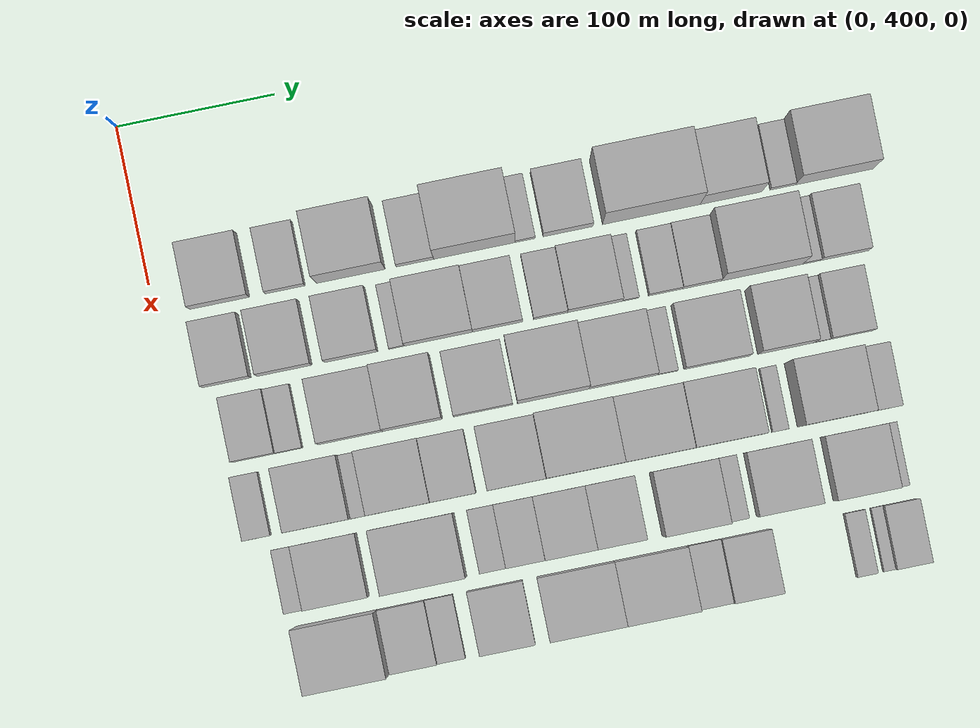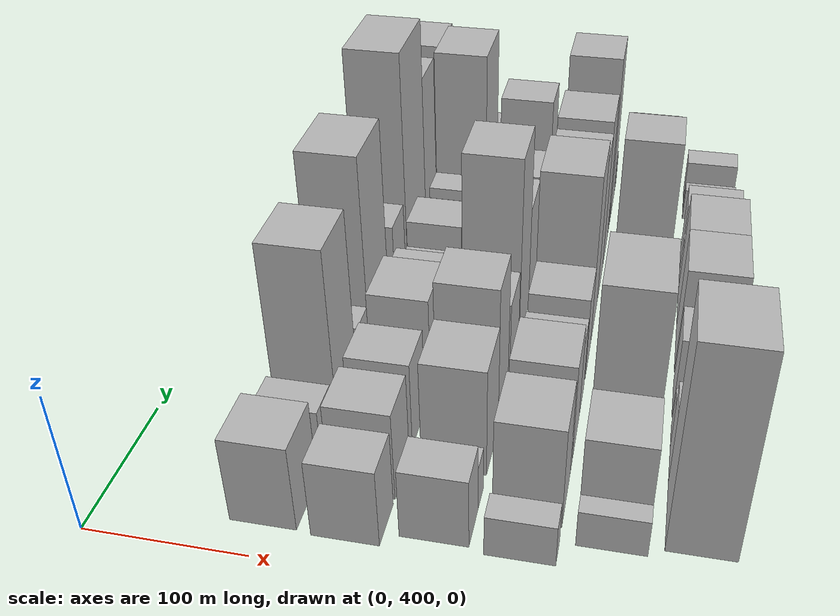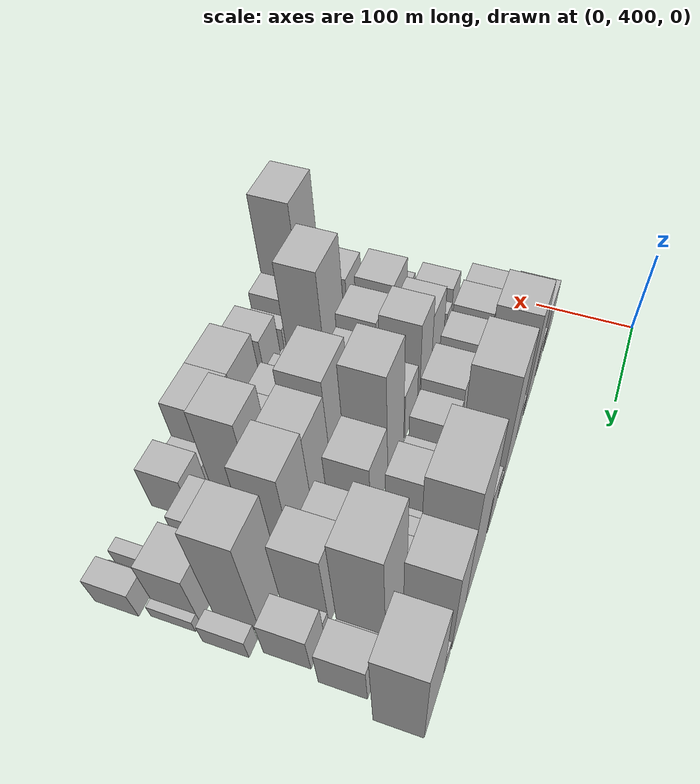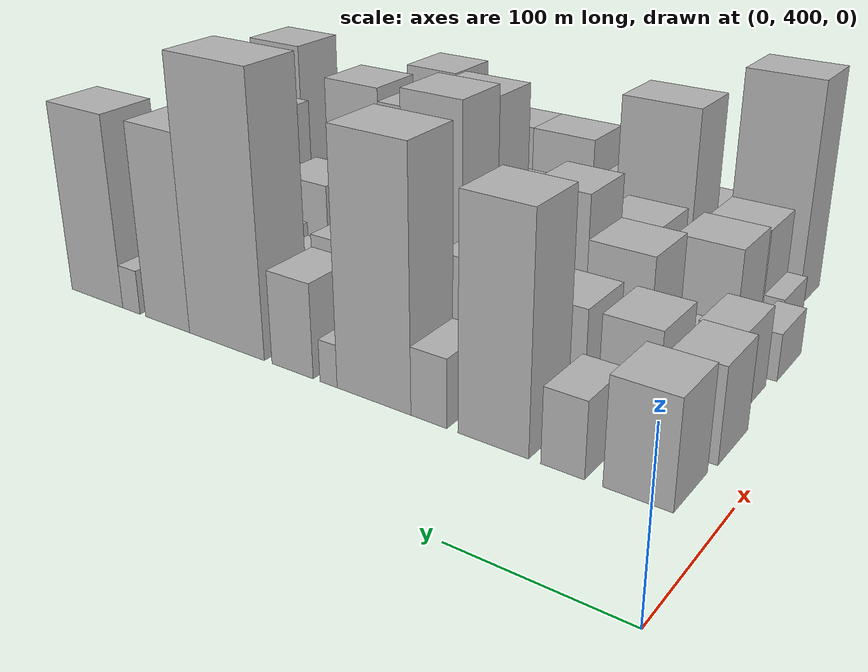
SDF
<sdf version="1.6">
 <world name="default">
  <model name="building_36">
   <static>1</static>
   <pose>100.0000 441.1656 0 0.000000 0.000000 0.000000</pose>
   <link name="link">
    <pose>0 0 31.50 0 0 0</pose>
    <collision name="collision"><geometry><box><size>40.0000 37.6408 63.0000</size></box></geometry></collision>
    <visual name="visual">
     <cast_shadows>0</cast_shadows>
     <geometry><box><size>40.0000 37.6408 63.0000</size></box></geometry>
     <material>
      <script>
       <uri>model://HANNAS_wall/materials/scripts</uri>
       <uri>model://HANNAS_wall/materials/textures</uri>
       <name>vrc/HANNAS_wall</name>
      </script>
     </material>
    </visual>
   </link>
  </model>
  <model name="building_37">
   <static>1</static>
   <pose>100.0000 482.5473 0 0.000000 0.000000 0.000000</pose>
   <link name="link">
    <pose>0 0 22.50 0 0 0</pose>
    <collision name="collision"><geometry><box><size>40.0000 25.1226 45.0000</size></box></geometry></collision>
    <visual name="visual">
     <cast_shadows>0</cast_shadows>
     <geometry><box><size>40.0000 25.1226 45.0000</size></box></geometry>
     <material>
      <script>
       <uri>model://HANNAS_wall/materials/scripts</uri>
       <uri>model://HANNAS_wall/materials/textures</uri>
       <name>vrc/HANNAS_wall</name>
      </script>
     </material>
    </visual>
   </link>
  </model>
  <model name="building_38">
   <static>1</static>
   <pose>100.0000 523.8339 0 0.000000 0.000000 0.000000</pose>
   <link name="link">
    <pose>0 0 69.00 0 0 0</pose>
    <collision name="collision"><geometry><box><size>40.0000 43.4507 138.0000</size></box></geometry></collision>
    <visual name="visual">
     <cast_shadows>0</cast_shadows>
     <geometry><box><size>40.0000 43.4507 138.0000</size></box></geometry>
     <material>
      <script>
       <uri>model://HANNAS_wall/materials/scripts</uri>
       <uri>model://HANNAS_wall/materials/textures</uri>
       <name>vrc/HANNAS_wall</name>
      </script>
     </material>
    </visual>
   </link>
  </model>
  <model name="building_39">
   <static>1</static>
   <pose>100.0000 564.3673 0 0.000000 0.000000 0.000000</pose>
   <link name="link">
    <pose>0 0 21.00 0 0 0</pose>
    <collision name="collision"><geometry><box><size>40.0000 23.6162 42.0000</size></box></geometry></collision>
    <visual name="visual">
     <cast_shadows>0</cast_shadows>
     <geometry><box><size>40.0000 23.6162 42.0000</size></box></geometry>
     <material>
      <script>
       <uri>model://HANNAS_wall/materials/scripts</uri>
       <uri>model://HANNAS_wall/materials/textures</uri>
       <name>vrc/HANNAS_wall</name>
      </script>
     </material>
    </visual>
   </link>
  </model>
  <model name="building_40">
   <static>1</static>
   <pose>100.0000 601.8708 0 0.000000 0.000000 0.000000</pose>
   <link name="link">
    <pose>0 0 78.00 0 0 0</pose>
    <collision name="collision"><geometry><box><size>40.0000 51.3907 156.0000</size></box></geometry></collision>
    <visual name="visual">
     <cast_shadows>0</cast_shadows>
     <geometry><box><size>40.0000 51.3907 156.0000</size></box></geometry>
     <material>
      <script>
       <uri>model://HANNAS_wall/materials/scripts</uri>
       <uri>model://HANNAS_wall/materials/textures</uri>
       <name>vrc/HANNAS_wall</name>
      </script>
     </material>
    </visual>
   </link>
  </model>
  <model name="building_41">
   <static>1</static>
   <pose>100.0000 633.8620 0 0.000000 0.000000 0.000000</pose>
   <link name="link">
    <pose>0 0 13.50 0 0 0</pose>
    <collision name="collision"><geometry><box><size>40.0000 12.5917 27.0000</size></box></geometry></collision>
    <visual name="visual">
     <cast_shadows>0</cast_shadows>
     <geometry><box><size>40.0000 12.5917 27.0000</size></box></geometry>
     <material>
      <script>
       <uri>model://HANNAS_wall/materials/scripts</uri>
       <uri>model://HANNAS_wall/materials/textures</uri>
       <name>vrc/HANNAS_wall</name>
      </script>
     </material>
    </visual>
   </link>
  </model>
  <model name="building_42">
   <static>1</static>
   <pose>100.0000 660.8852 0 0.000000 0.000000 0.000000</pose>
   <link name="link">
    <pose>0 0 30.00 0 0 0</pose>
    <collision name="collision"><geometry><box><size>40.0000 31.4549 60.0000</size></box></geometry></collision>
    <visual name="visual">
     <cast_shadows>0</cast_shadows>
     <geometry><box><size>40.0000 31.4549 60.0000</size></box></geometry>
     <material>
      <script>
       <uri>model://HANNAS_wall/materials/scripts</uri>
       <uri>model://HANNAS_wall/materials/textures</uri>
       <name>vrc/HANNAS_wall</name>
      </script>
     </material>
    </visual>
   </link>
  </model>
  <model name="building_43">
   <static>1</static>
   <pose>100.0000 713.4635 0 0.000000 0.000000 0.000000</pose>
   <link name="link">
    <pose>0 0 88.50 0 0 0</pose>
    <collision name="collision"><geometry><box><size>40.0000 61.7016 177.0000</size></box></geometry></collision>
    <visual name="visual">
     <cast_shadows>0</cast_shadows>
     <geometry><box><size>40.0000 61.7016 177.0000</size></box></geometry>
     <material>
      <script>
       <uri>model://HANNAS_wall/materials/scripts</uri>
       <uri>model://HANNAS_wall/materials/textures</uri>
       <name>vrc/HANNAS_wall</name>
      </script>
     </material>
    </visual>
   </link>
  </model>
  <model name="building_44">
   <static>1</static>
   <pose>100.0000 763.8396 0 0.000000 0.000000 0.000000</pose>
   <link name="link">
    <pose>0 0 64.50 0 0 0</pose>
    <collision name="collision"><geometry><box><size>40.0000 39.0508 129.0000</size></box></geometry></collision>
    <visual name="visual">
     <cast_shadows>0</cast_shadows>
     <geometry><box><size>40.0000 39.0508 129.0000</size></box></geometry>
     <material>
      <script>
       <uri>model://HANNAS_wall/materials/scripts</uri>
       <uri>model://HANNAS_wall/materials/textures</uri>
       <name>vrc/HANNAS_wall</name>
      </script>
     </material>
    </visual>
   </link>
  </model>
  <model name="building_45">
   <static>1</static>
   <pose>100.0000 796.4080 0 0.000000 0.000000 0.000000</pose>
   <link name="link">
    <pose>0 0 15.00 0 0 0</pose>
    <collision name="collision"><geometry><box><size>40.0000 16.0860 30.0000</size></box></geometry></collision>
    <visual name="visual">
     <cast_shadows>0</cast_shadows>
     <geometry><box><size>40.0000 16.0860 30.0000</size></box></geometry>
     <material>
      <script>
       <uri>model://HANNAS_wall/materials/scripts</uri>
       <uri>model://HANNAS_wall/materials/textures</uri>
       <name>vrc/HANNAS_wall</name>
      </script>
     </material>
    </visual>
   </link>
  </model>
  <model name="building_46">
   <static>1</static>
   <pose>100.0000 828.9741 0 0.000000 0.000000 0.000000</pose>
   <link name="link">
    <pose>0 0 64.50 0 0 0</pose>
    <collision name="collision"><geometry><box><size>40.0000 49.0461 129.0000</size></box></geometry></collision>
    <visual name="visual">
     <cast_shadows>0</cast_shadows>
     <geometry><box><size>40.0000 49.0461 129.0000</size></box></geometry>
     <material>
      <script>
       <uri>model://HANNAS_wall/materials/scripts</uri>
       <uri>model://HANNAS_wall/materials/textures</uri>
       <name>vrc/HANNAS_wall</name>
      </script>
     </material>
    </visual>
   </link>
  </model>
  <model name="building_84">
   <static>1</static>
   <pose>149.0000 435.7550 0 0.000000 0.000000 0.000000</pose>
   <link name="link">
    <pose>0 0 28.50 0 0 0</pose>
    <collision name="collision"><geometry><box><size>40.0000 30.4782 57.0000</size></box></geometry></collision>
    <visual name="visual">
     <cast_shadows>0</cast_shadows>
     <geometry><box><size>40.0000 30.4782 57.0000</size></box></geometry>
     <material>
      <script>
       <uri>model://HANNAS_wall/materials/scripts</uri>
       <uri>model://HANNAS_wall/materials/textures</uri>
       <name>vrc/HANNAS_wall</name>
      </script>
     </material>
    </visual>
   </link>
  </model>
  <model name="building_85">
   <static>1</static>
   <pose>149.0000 472.2001 0 0.000000 0.000000 0.000000</pose>
   <link name="link">
    <pose>0 0 33.00 0 0 0</pose>
    <collision name="collision"><geometry><box><size>40.0000 34.4119 66.0000</size></box></geometry></collision>
    <visual name="visual">
     <cast_shadows>0</cast_shadows>
     <geometry><box><size>40.0000 34.4119 66.0000</size></box></geometry>
     <material>
      <script>
       <uri>model://HANNAS_wall/materials/scripts</uri>
       <uri>model://HANNAS_wall/materials/textures</uri>
       <name>vrc/HANNAS_wall</name>
      </script>
     </material>
    </visual>
   </link>
  </model>
  <model name="building_86">
   <static>1</static>
   <pose>149.0000 514.1675 0 0.000000 0.000000 0.000000</pose>
   <link name="link">
    <pose>0 0 33.00 0 0 0</pose>
    <collision name="collision"><geometry><box><size>40.0000 33.5229 66.0000</size></box></geometry></collision>
    <visual name="visual">
     <cast_shadows>0</cast_shadows>
     <geometry><box><size>40.0000 33.5229 66.0000</size></box></geometry>
     <material>
      <script>
       <uri>model://HANNAS_wall/materials/scripts</uri>
       <uri>model://HANNAS_wall/materials/textures</uri>
       <name>vrc/HANNAS_wall</name>
      </script>
     </material>
    </visual>
   </link>
  </model>
  <model name="building_87">
   <static>1</static>
   <pose>149.0000 542.8155 0 0.000000 0.000000 0.000000</pose>
   <link name="link">
    <pose>0 0 12.00 0 0 0</pose>
    <collision name="collision"><geometry><box><size>40.0000 9.7730 24.0000</size></box></geometry></collision>
    <visual name="visual">
     <cast_shadows>0</cast_shadows>
     <geometry><box><size>40.0000 9.7730 24.0000</size></box></geometry>
     <material>
      <script>
       <uri>model://HANNAS_wall/materials/scripts</uri>
       <uri>model://HANNAS_wall/materials/textures</uri>
       <name>vrc/HANNAS_wall</name>
      </script>
     </material>
    </visual>
   </link>
  </model>
  <model name="building_88">
   <static>1</static>
   <pose>149.0000 569.1627 0 0.000000 0.000000 0.000000</pose>
   <link name="link">
    <pose>0 0 37.50 0 0 0</pose>
    <collision name="collision"><geometry><box><size>40.0000 42.9213 75.0000</size></box></geometry></collision>
    <visual name="visual">
     <cast_shadows>0</cast_shadows>
     <geometry><box><size>40.0000 42.9213 75.0000</size></box></geometry>
     <material>
      <script>
       <uri>model://HANNAS_wall/materials/scripts</uri>
       <uri>model://HANNAS_wall/materials/textures</uri>
       <name>vrc/HANNAS_wall</name>
      </script>
     </material>
    </visual>
   </link>
  </model>
  <model name="building_89">
   <static>1</static>
   <pose>149.0000 606.3343 0 0.000000 0.000000 0.000000</pose>
   <link name="link">
    <pose>0 0 30.00 0 0 0</pose>
    <collision name="collision"><geometry><box><size>40.0000 31.4221 60.0000</size></box></geometry></collision>
    <visual name="visual">
     <cast_shadows>0</cast_shadows>
     <geometry><box><size>40.0000 31.4221 60.0000</size></box></geometry>
     <material>
      <script>
       <uri>model://HANNAS_wall/materials/scripts</uri>
       <uri>model://HANNAS_wall/materials/textures</uri>
       <name>vrc/HANNAS_wall</name>
      </script>
     </material>
    </visual>
   </link>
  </model>
  <model name="building_90">
   <static>1</static>
   <pose>149.0000 639.8095 0 0.000000 0.000000 0.000000</pose>
   <link name="link">
    <pose>0 0 21.00 0 0 0</pose>
    <collision name="collision"><geometry><box><size>40.0000 21.5283 42.0000</size></box></geometry></collision>
    <visual name="visual">
     <cast_shadows>0</cast_shadows>
     <geometry><box><size>40.0000 21.5283 42.0000</size></box></geometry>
     <material>
      <script>
       <uri>model://HANNAS_wall/materials/scripts</uri>
       <uri>model://HANNAS_wall/materials/textures</uri>
       <name>vrc/HANNAS_wall</name>
      </script>
     </material>
    </visual>
   </link>
  </model>
  <model name="building_91">
   <static>1</static>
   <pose>149.0000 667.9048 0 0.000000 0.000000 0.000000</pose>
   <link name="link">
    <pose>0 0 31.50 0 0 0</pose>
    <collision name="collision"><geometry><box><size>40.0000 34.6622 63.0000</size></box></geometry></collision>
    <visual name="visual">
     <cast_shadows>0</cast_shadows>
     <geometry><box><size>40.0000 34.6622 63.0000</size></box></geometry>
     <material>
      <script>
       <uri>model://HANNAS_wall/materials/scripts</uri>
       <uri>model://HANNAS_wall/materials/textures</uri>
       <name>vrc/HANNAS_wall</name>
      </script>
     </material>
    </visual>
   </link>
  </model>
  <model name="building_92">
   <static>1</static>
   <pose>149.0000 690.3986 0 0.000000 0.000000 0.000000</pose>
   <link name="link">
    <pose>0 0 10.50 0 0 0</pose>
    <collision name="collision"><geometry><box><size>40.0000 10.3255 21.0000</size></box></geometry></collision>
    <visual name="visual">
     <cast_shadows>0</cast_shadows>
     <geometry><box><size>40.0000 10.3255 21.0000</size></box></geometry>
     <material>
      <script>
       <uri>model://HANNAS_wall/materials/scripts</uri>
       <uri>model://HANNAS_wall/materials/textures</uri>
       <name>vrc/HANNAS_wall</name>
      </script>
     </material>
    </visual>
   </link>
  </model>
  <model name="building_93">
   <static>1</static>
   <pose>149.0000 712.2744 0 0.000000 0.000000 0.000000</pose>
   <link name="link">
    <pose>0 0 19.50 0 0 0</pose>
    <collision name="collision"><geometry><box><size>40.0000 21.4261 39.0000</size></box></geometry></collision>
    <visual name="visual">
     <cast_shadows>0</cast_shadows>
     <geometry><box><size>40.0000 21.4261 39.0000</size></box></geometry>
     <material>
      <script>
       <uri>model://HANNAS_wall/materials/scripts</uri>
       <uri>model://HANNAS_wall/materials/textures</uri>
       <name>vrc/HANNAS_wall</name>
      </script>
     </material>
    </visual>
   </link>
  </model>
  <model name="building_94">
   <static>1</static>
   <pose>149.0000 735.1538 0 0.000000 0.000000 0.000000</pose>
   <link name="link">
    <pose>0 0 24.00 0 0 0</pose>
    <collision name="collision"><geometry><box><size>40.0000 24.3326 48.0000</size></box></geometry></collision>
    <visual name="visual">
     <cast_shadows>0</cast_shadows>
     <geometry><box><size>40.0000 24.3326 48.0000</size></box></geometry>
     <material>
      <script>
       <uri>model://HANNAS_wall/materials/scripts</uri>
       <uri>model://HANNAS_wall/materials/textures</uri>
       <name>vrc/HANNAS_wall</name>
      </script>
     </material>
    </visual>
   </link>
  </model>
  <model name="building_95">
   <static>1</static>
   <pose>149.0000 772.9929 0 0.000000 0.000000 0.000000</pose>
   <link name="link">
    <pose>0 0 75.00 0 0 0</pose>
    <collision name="collision"><geometry><box><size>40.0000 51.3458 150.0000</size></box></geometry></collision>
    <visual name="visual">
     <cast_shadows>0</cast_shadows>
     <geometry><box><size>40.0000 51.3458 150.0000</size></box></geometry>
     <material>
      <script>
       <uri>model://HANNAS_wall/materials/scripts</uri>
       <uri>model://HANNAS_wall/materials/textures</uri>
       <name>vrc/HANNAS_wall</name>
      </script>
     </material>
    </visual>
   </link>
  </model>
  <model name="building_96">
   <static>1</static>
   <pose>149.0000 804.4716 0 0.000000 0.000000 0.000000</pose>
   <link name="link">
    <pose>0 0 13.50 0 0 0</pose>
    <collision name="collision"><geometry><box><size>40.0000 11.6116 27.0000</size></box></geometry></collision>
    <visual name="visual">
     <cast_shadows>0</cast_shadows>
     <geometry><box><size>40.0000 11.6116 27.0000</size></box></geometry>
     <material>
      <script>
       <uri>model://HANNAS_wall/materials/scripts</uri>
       <uri>model://HANNAS_wall/materials/textures</uri>
       <name>vrc/HANNAS_wall</name>
      </script>
     </material>
    </visual>
   </link>
  </model>
  <model name="building_97">
   <static>1</static>
   <pose>149.0000 825.4328 0 0.000000 0.000000 0.000000</pose>
   <link name="link">
    <pose>0 0 28.50 0 0 0</pose>
    <collision name="collision"><geometry><box><size>40.0000 30.3109 57.0000</size></box></geometry></collision>
    <visual name="visual">
     <cast_shadows>0</cast_shadows>
     <geometry><box><size>40.0000 30.3109 57.0000</size></box></geometry>
     <material>
      <script>
       <uri>model://HANNAS_wall/materials/scripts</uri>
       <uri>model://HANNAS_wall/materials/textures</uri>
       <name>vrc/HANNAS_wall</name>
      </script>
     </material>
    </visual>
   </link>
  </model>
  <model name="building_133">
   <static>1</static>
   <pose>198.0000 442.9491 0 0.000000 0.000000 0.000000</pose>
   <link name="link">
    <pose>0 0 25.50 0 0 0</pose>
    <collision name="collision"><geometry><box><size>40.0000 27.4139 51.0000</size></box></geometry></collision>
    <visual name="visual">
     <cast_shadows>0</cast_shadows>
     <geometry><box><size>40.0000 27.4139 51.0000</size></box></geometry>
     <material>
      <script>
       <uri>model://HANNAS_wall/materials/scripts</uri>
       <uri>model://HANNAS_wall/materials/textures</uri>
       <name>vrc/HANNAS_wall</name>
      </script>
     </material>
    </visual>
   </link>
  </model>
  <model name="building_134">
   <static>1</static>
   <pose>198.0000 465.0975 0 0.000000 0.000000 0.000000</pose>
   <link name="link">
    <pose>0 0 16.50 0 0 0</pose>
    <collision name="collision"><geometry><box><size>40.0000 16.8830 33.0000</size></box></geometry></collision>
    <visual name="visual">
     <cast_shadows>0</cast_shadows>
     <geometry><box><size>40.0000 16.8830 33.0000</size></box></geometry>
     <material>
      <script>
       <uri>model://HANNAS_wall/materials/scripts</uri>
       <uri>model://HANNAS_wall/materials/textures</uri>
       <name>vrc/HANNAS_wall</name>
      </script>
     </material>
    </visual>
   </link>
  </model>
  <model name="building_135">
   <static>1</static>
   <pose>198.0000 503.9978 0 0.000000 0.000000 0.000000</pose>
   <link name="link">
    <pose>0 0 40.50 0 0 0</pose>
    <collision name="collision"><geometry><box><size>40.0000 40.9177 81.0000</size></box></geometry></collision>
    <visual name="visual">
     <cast_shadows>0</cast_shadows>
     <geometry><box><size>40.0000 40.9177 81.0000</size></box></geometry>
     <material>
      <script>
       <uri>model://HANNAS_wall/materials/scripts</uri>
       <uri>model://HANNAS_wall/materials/textures</uri>
       <name>vrc/HANNAS_wall</name>
      </script>
     </material>
    </visual>
   </link>
  </model>
  <model name="building_136">
   <static>1</static>
   <pose>198.0000 543.0552 0 0.000000 0.000000 0.000000</pose>
   <link name="link">
    <pose>0 0 54.00 0 0 0</pose>
    <collision name="collision"><geometry><box><size>40.0000 37.1970 108.0000</size></box></geometry></collision>
    <visual name="visual">
     <cast_shadows>0</cast_shadows>
     <geometry><box><size>40.0000 37.1970 108.0000</size></box></geometry>
     <material>
      <script>
       <uri>model://HANNAS_wall/materials/scripts</uri>
       <uri>model://HANNAS_wall/materials/textures</uri>
       <name>vrc/HANNAS_wall</name>
      </script>
     </material>
    </visual>
   </link>
  </model>
  <model name="building_137">
   <static>1</static>
   <pose>198.0000 587.2409 0 0.000000 0.000000 0.000000</pose>
   <link name="link">
    <pose>0 0 31.50 0 0 0</pose>
    <collision name="collision"><geometry><box><size>40.0000 37.1743 63.0000</size></box></geometry></collision>
    <visual name="visual">
     <cast_shadows>0</cast_shadows>
     <geometry><box><size>40.0000 37.1743 63.0000</size></box></geometry>
     <material>
      <script>
       <uri>model://HANNAS_wall/materials/scripts</uri>
       <uri>model://HANNAS_wall/materials/textures</uri>
       <name>vrc/HANNAS_wall</name>
      </script>
     </material>
    </visual>
   </link>
  </model>
  <model name="building_138">
   <static>1</static>
   <pose>198.0000 631.2155 0 0.000000 0.000000 0.000000</pose>
   <link name="link">
    <pose>0 0 73.50 0 0 0</pose>
    <collision name="collision"><geometry><box><size>40.0000 44.7749 147.0000</size></box></geometry></collision>
    <visual name="visual">
     <cast_shadows>0</cast_shadows>
     <geometry><box><size>40.0000 44.7749 147.0000</size></box></geometry>
     <material>
      <script>
       <uri>model://HANNAS_wall/materials/scripts</uri>
       <uri>model://HANNAS_wall/materials/textures</uri>
       <name>vrc/HANNAS_wall</name>
      </script>
     </material>
    </visual>
   </link>
  </model>
  <model name="building_139">
   <static>1</static>
   <pose>198.0000 675.2200 0 0.000000 0.000000 0.000000</pose>
   <link name="link">
    <pose>0 0 40.50 0 0 0</pose>
    <collision name="collision"><geometry><box><size>40.0000 43.2341 81.0000</size></box></geometry></collision>
    <visual name="visual">
     <cast_shadows>0</cast_shadows>
     <geometry><box><size>40.0000 43.2341 81.0000</size></box></geometry>
     <material>
      <script>
       <uri>model://HANNAS_wall/materials/scripts</uri>
       <uri>model://HANNAS_wall/materials/textures</uri>
       <name>vrc/HANNAS_wall</name>
      </script>
     </material>
    </visual>
   </link>
  </model>
  <model name="building_140">
   <static>1</static>
   <pose>198.0000 703.3370 0 0.000000 0.000000 0.000000</pose>
   <link name="link">
    <pose>0 0 13.50 0 0 0</pose>
    <collision name="collision"><geometry><box><size>40.0000 12.9998 27.0000</size></box></geometry></collision>
    <visual name="visual">
     <cast_shadows>0</cast_shadows>
     <geometry><box><size>40.0000 12.9998 27.0000</size></box></geometry>
     <material>
      <script>
       <uri>model://HANNAS_wall/materials/scripts</uri>
       <uri>model://HANNAS_wall/materials/textures</uri>
       <name>vrc/HANNAS_wall</name>
      </script>
     </material>
    </visual>
   </link>
  </model>
  <model name="building_141">
   <static>1</static>
   <pose>198.0000 734.6066 0 0.000000 0.000000 0.000000</pose>
   <link name="link">
    <pose>0 0 36.00 0 0 0</pose>
    <collision name="collision"><geometry><box><size>40.0000 41.5394 72.0000</size></box></geometry></collision>
    <visual name="visual">
     <cast_shadows>0</cast_shadows>
     <geometry><box><size>40.0000 41.5394 72.0000</size></box></geometry>
     <material>
      <script>
       <uri>model://HANNAS_wall/materials/scripts</uri>
       <uri>model://HANNAS_wall/materials/textures</uri>
       <name>vrc/HANNAS_wall</name>
      </script>
     </material>
    </visual>
   </link>
  </model>
  <model name="building_142">
   <static>1</static>
   <pose>198.0000 777.9242 0 0.000000 0.000000 0.000000</pose>
   <link name="link">
    <pose>0 0 55.50 0 0 0</pose>
    <collision name="collision"><geometry><box><size>40.0000 35.0957 111.0000</size></box></geometry></collision>
    <visual name="visual">
     <cast_shadows>0</cast_shadows>
     <geometry><box><size>40.0000 35.0957 111.0000</size></box></geometry>
     <material>
      <script>
       <uri>model://HANNAS_wall/materials/scripts</uri>
       <uri>model://HANNAS_wall/materials/textures</uri>
       <name>vrc/HANNAS_wall</name>
      </script>
     </material>
    </visual>
   </link>
  </model>
  <model name="building_143">
   <static>1</static>
   <pose>198.0000 800.5905 0 0.000000 0.000000 0.000000</pose>
   <link name="link">
    <pose>0 0 12.00 0 0 0</pose>
    <collision name="collision"><geometry><box><size>40.0000 10.2369 24.0000</size></box></geometry></collision>
    <visual name="visual">
     <cast_shadows>0</cast_shadows>
     <geometry><box><size>40.0000 10.2369 24.0000</size></box></geometry>
     <material>
      <script>
       <uri>model://HANNAS_wall/materials/scripts</uri>
       <uri>model://HANNAS_wall/materials/textures</uri>
       <name>vrc/HANNAS_wall</name>
      </script>
     </material>
    </visual>
   </link>
  </model>
  <model name="building_144">
   <static>1</static>
   <pose>198.0000 819.5199 0 0.000000 0.000000 0.000000</pose>
   <link name="link">
    <pose>0 0 27.00 0 0 0</pose>
    <collision name="collision"><geometry><box><size>40.0000 27.6218 54.0000</size></box></geometry></collision>
    <visual name="visual">
     <cast_shadows>0</cast_shadows>
     <geometry><box><size>40.0000 27.6218 54.0000</size></box></geometry>
     <material>
      <script>
       <uri>model://HANNAS_wall/materials/scripts</uri>
       <uri>model://HANNAS_wall/materials/textures</uri>
       <name>vrc/HANNAS_wall</name>
      </script>
     </material>
    </visual>
   </link>
  </model>
  <model name="building_178">
   <static>1</static>
   <pose>247.0000 434.7086 0 0.000000 0.000000 0.000000</pose>
   <link name="link">
    <pose>0 0 15.00 0 0 0</pose>
    <collision name="collision"><geometry><box><size>40.0000 17.7222 30.0000</size></box></geometry></collision>
    <visual name="visual">
     <cast_shadows>0</cast_shadows>
     <geometry><box><size>40.0000 17.7222 30.0000</size></box></geometry>
     <material>
      <script>
       <uri>model://HANNAS_wall/materials/scripts</uri>
       <uri>model://HANNAS_wall/materials/textures</uri>
       <name>vrc/HANNAS_wall</name>
      </script>
     </material>
    </visual>
   </link>
  </model>
  <model name="building_179">
   <static>1</static>
   <pose>247.0000 473.1462 0 0.000000 0.000000 0.000000</pose>
   <link name="link">
    <pose>0 0 37.50 0 0 0</pose>
    <collision name="collision"><geometry><box><size>40.0000 41.1530 75.0000</size></box></geometry></collision>
    <visual name="visual">
     <cast_shadows>0</cast_shadows>
     <geometry><box><size>40.0000 41.1530 75.0000</size></box></geometry>
     <material>
      <script>
       <uri>model://HANNAS_wall/materials/scripts</uri>
       <uri>model://HANNAS_wall/materials/textures</uri>
       <name>vrc/HANNAS_wall</name>
      </script>
     </material>
    </visual>
   </link>
  </model>
  <model name="building_180">
   <static>1</static>
   <pose>247.0000 498.9372 0 0.000000 0.000000 0.000000</pose>
   <link name="link">
    <pose>0 0 10.50 0 0 0</pose>
    <collision name="collision"><geometry><box><size>40.0000 10.4289 21.0000</size></box></geometry></collision>
    <visual name="visual">
     <cast_shadows>0</cast_shadows>
     <geometry><box><size>40.0000 10.4289 21.0000</size></box></geometry>
     <material>
      <script>
       <uri>model://HANNAS_wall/materials/scripts</uri>
       <uri>model://HANNAS_wall/materials/textures</uri>
       <name>vrc/HANNAS_wall</name>
      </script>
     </material>
    </visual>
   </link>
  </model>
  <model name="building_181">
   <static>1</static>
   <pose>247.0000 524.1149 0 0.000000 0.000000 0.000000</pose>
   <link name="link">
    <pose>0 0 37.50 0 0 0</pose>
    <collision name="collision"><geometry><box><size>40.0000 39.9265 75.0000</size></box></geometry></collision>
    <visual name="visual">
     <cast_shadows>0</cast_shadows>
     <geometry><box><size>40.0000 39.9265 75.0000</size></box></geometry>
     <material>
      <script>
       <uri>model://HANNAS_wall/materials/scripts</uri>
       <uri>model://HANNAS_wall/materials/textures</uri>
       <name>vrc/HANNAS_wall</name>
      </script>
     </material>
    </visual>
   </link>
  </model>
  <model name="building_182">
   <static>1</static>
   <pose>247.0000 558.4577 0 0.000000 0.000000 0.000000</pose>
   <link name="link">
    <pose>0 0 28.50 0 0 0</pose>
    <collision name="collision"><geometry><box><size>40.0000 28.7592 57.0000</size></box></geometry></collision>
    <visual name="visual">
     <cast_shadows>0</cast_shadows>
     <geometry><box><size>40.0000 28.7592 57.0000</size></box></geometry>
     <material>
      <script>
       <uri>model://HANNAS_wall/materials/scripts</uri>
       <uri>model://HANNAS_wall/materials/textures</uri>
       <name>vrc/HANNAS_wall</name>
      </script>
     </material>
    </visual>
   </link>
  </model>
  <model name="building_183">
   <static>1</static>
   <pose>247.0000 598.2176 0 0.000000 0.000000 0.000000</pose>
   <link name="link">
    <pose>0 0 33.00 0 0 0</pose>
    <collision name="collision"><geometry><box><size>40.0000 36.7606 66.0000</size></box></geometry></collision>
    <visual name="visual">
     <cast_shadows>0</cast_shadows>
     <geometry><box><size>40.0000 36.7606 66.0000</size></box></geometry>
     <material>
      <script>
       <uri>model://HANNAS_wall/materials/scripts</uri>
       <uri>model://HANNAS_wall/materials/textures</uri>
       <name>vrc/HANNAS_wall</name>
      </script>
     </material>
    </visual>
   </link>
  </model>
  <model name="building_184">
   <static>1</static>
   <pose>247.0000 640.9851 0 0.000000 0.000000 0.000000</pose>
   <link name="link">
    <pose>0 0 67.50 0 0 0</pose>
    <collision name="collision"><geometry><box><size>40.0000 48.7743 135.0000</size></box></geometry></collision>
    <visual name="visual">
     <cast_shadows>0</cast_shadows>
     <geometry><box><size>40.0000 48.7743 135.0000</size></box></geometry>
     <material>
      <script>
       <uri>model://HANNAS_wall/materials/scripts</uri>
       <uri>model://HANNAS_wall/materials/textures</uri>
       <name>vrc/HANNAS_wall</name>
      </script>
     </material>
    </visual>
   </link>
  </model>
  <model name="building_185">
   <static>1</static>
   <pose>247.0000 687.0428 0 0.000000 0.000000 0.000000</pose>
   <link name="link">
    <pose>0 0 58.50 0 0 0</pose>
    <collision name="collision"><geometry><box><size>40.0000 43.3412 117.0000</size></box></geometry></collision>
    <visual name="visual">
     <cast_shadows>0</cast_shadows>
     <geometry><box><size>40.0000 43.3412 117.0000</size></box></geometry>
     <material>
      <script>
       <uri>model://HANNAS_wall/materials/scripts</uri>
       <uri>model://HANNAS_wall/materials/textures</uri>
       <name>vrc/HANNAS_wall</name>
      </script>
     </material>
    </visual>
   </link>
  </model>
  <model name="building_186">
   <static>1</static>
   <pose>247.0000 730.9006 0 0.000000 0.000000 0.000000</pose>
   <link name="link">
    <pose>0 0 63.00 0 0 0</pose>
    <collision name="collision"><geometry><box><size>40.0000 44.3744 126.0000</size></box></geometry></collision>
    <visual name="visual">
     <cast_shadows>0</cast_shadows>
     <geometry><box><size>40.0000 44.3744 126.0000</size></box></geometry>
     <material>
      <script>
       <uri>model://HANNAS_wall/materials/scripts</uri>
       <uri>model://HANNAS_wall/materials/textures</uri>
       <name>vrc/HANNAS_wall</name>
      </script>
     </material>
    </visual>
   </link>
  </model>
  <model name="building_187">
   <static>1</static>
   <pose>247.0000 764.2030 0 0.000000 0.000000 0.000000</pose>
   <link name="link">
    <pose>0 0 12.00 0 0 0</pose>
    <collision name="collision"><geometry><box><size>40.0000 10.2305 24.0000</size></box></geometry></collision>
    <visual name="visual">
     <cast_shadows>0</cast_shadows>
     <geometry><box><size>40.0000 10.2305 24.0000</size></box></geometry>
     <material>
      <script>
       <uri>model://HANNAS_wall/materials/scripts</uri>
       <uri>model://HANNAS_wall/materials/textures</uri>
       <name>vrc/HANNAS_wall</name>
      </script>
     </material>
    </visual>
   </link>
  </model>
  <model name="building_188">
   <static>1</static>
   <pose>247.0000 797.2385 0 0.000000 0.000000 0.000000</pose>
   <link name="link">
    <pose>0 0 72.00 0 0 0</pose>
    <collision name="collision"><geometry><box><size>40.0000 43.8404 144.0000</size></box></geometry></collision>
    <visual name="visual">
     <cast_shadows>0</cast_shadows>
     <geometry><box><size>40.0000 43.8404 144.0000</size></box></geometry>
     <material>
      <script>
       <uri>model://HANNAS_wall/materials/scripts</uri>
       <uri>model://HANNAS_wall/materials/textures</uri>
       <name>vrc/HANNAS_wall</name>
      </script>
     </material>
    </visual>
   </link>
  </model>
  <model name="building_189">
   <static>1</static>
   <pose>247.0000 832.9275 0 0.000000 0.000000 0.000000</pose>
   <link name="link">
    <pose>0 0 15.00 0 0 0</pose>
    <collision name="collision"><geometry><box><size>40.0000 15.5377 30.0000</size></box></geometry></collision>
    <visual name="visual">
     <cast_shadows>0</cast_shadows>
     <geometry><box><size>40.0000 15.5377 30.0000</size></box></geometry>
     <material>
      <script>
       <uri>model://HANNAS_wall/materials/scripts</uri>
       <uri>model://HANNAS_wall/materials/textures</uri>
       <name>vrc/HANNAS_wall</name>
      </script>
     </material>
    </visual>
   </link>
  </model>
  <model name="building_229">
   <static>1</static>
   <pose>296.0000 448.3565 0 0.000000 0.000000 0.000000</pose>
   <link name="link">
    <pose>0 0 13.50 0 0 0</pose>
    <collision name="collision"><geometry><box><size>40.0000 12.9251 27.0000</size></box></geometry></collision>
    <visual name="visual">
     <cast_shadows>0</cast_shadows>
     <geometry><box><size>40.0000 12.9251 27.0000</size></box></geometry>
     <material>
      <script>
       <uri>model://HANNAS_wall/materials/scripts</uri>
       <uri>model://HANNAS_wall/materials/textures</uri>
       <name>vrc/HANNAS_wall</name>
      </script>
     </material>
    </visual>
   </link>
  </model>
  <model name="building_230">
   <static>1</static>
   <pose>296.0000 475.1064 0 0.000000 0.000000 0.000000</pose>
   <link name="link">
    <pose>0 0 34.50 0 0 0</pose>
    <collision name="collision"><geometry><box><size>40.0000 40.5747 69.0000</size></box></geometry></collision>
    <visual name="visual">
     <cast_shadows>0</cast_shadows>
     <geometry><box><size>40.0000 40.5747 69.0000</size></box></geometry>
     <material>
      <script>
       <uri>model://HANNAS_wall/materials/scripts</uri>
       <uri>model://HANNAS_wall/materials/textures</uri>
       <name>vrc/HANNAS_wall</name>
      </script>
     </material>
    </visual>
   </link>
  </model>
  <model name="building_231">
   <static>1</static>
   <pose>296.0000 530.6034 0 0.000000 0.000000 0.000000</pose>
   <link name="link">
    <pose>0 0 67.50 0 0 0</pose>
    <collision name="collision"><geometry><box><size>40.0000 52.4194 135.0000</size></box></geometry></collision>
    <visual name="visual">
     <cast_shadows>0</cast_shadows>
     <geometry><box><size>40.0000 52.4194 135.0000</size></box></geometry>
     <material>
      <script>
       <uri>model://HANNAS_wall/materials/scripts</uri>
       <uri>model://HANNAS_wall/materials/textures</uri>
       <name>vrc/HANNAS_wall</name>
      </script>
     </material>
    </visual>
   </link>
  </model>
  <model name="building_232">
   <static>1</static>
   <pose>296.0000 573.0701 0 0.000000 0.000000 0.000000</pose>
   <link name="link">
    <pose>0 0 15.00 0 0 0</pose>
    <collision name="collision"><geometry><box><size>40.0000 16.5138 30.0000</size></box></geometry></collision>
    <visual name="visual">
     <cast_shadows>0</cast_shadows>
     <geometry><box><size>40.0000 16.5138 30.0000</size></box></geometry>
     <material>
      <script>
       <uri>model://HANNAS_wall/materials/scripts</uri>
       <uri>model://HANNAS_wall/materials/textures</uri>
       <name>vrc/HANNAS_wall</name>
      </script>
     </material>
    </visual>
   </link>
  </model>
  <model name="building_233">
   <static>1</static>
   <pose>296.0000 593.6735 0 0.000000 0.000000 0.000000</pose>
   <link name="link">
    <pose>0 0 21.00 0 0 0</pose>
    <collision name="collision"><geometry><box><size>40.0000 24.6930 42.0000</size></box></geometry></collision>
    <visual name="visual">
     <cast_shadows>0</cast_shadows>
     <geometry><box><size>40.0000 24.6930 42.0000</size></box></geometry>
     <material>
      <script>
       <uri>model://HANNAS_wall/materials/scripts</uri>
       <uri>model://HANNAS_wall/materials/textures</uri>
       <name>vrc/HANNAS_wall</name>
      </script>
     </material>
    </visual>
   </link>
  </model>
  <model name="building_234">
   <static>1</static>
   <pose>296.0000 622.4837 0 0.000000 0.000000 0.000000</pose>
   <link name="link">
    <pose>0 0 28.50 0 0 0</pose>
    <collision name="collision"><geometry><box><size>40.0000 32.9274 57.0000</size></box></geometry></collision>
    <visual name="visual">
     <cast_shadows>0</cast_shadows>
     <geometry><box><size>40.0000 32.9274 57.0000</size></box></geometry>
     <material>
      <script>
       <uri>model://HANNAS_wall/materials/scripts</uri>
       <uri>model://HANNAS_wall/materials/textures</uri>
       <name>vrc/HANNAS_wall</name>
      </script>
     </material>
    </visual>
   </link>
  </model>
  <model name="building_235">
   <static>1</static>
   <pose>296.0000 654.4166 0 0.000000 0.000000 0.000000</pose>
   <link name="link">
    <pose>0 0 28.50 0 0 0</pose>
    <collision name="collision"><geometry><box><size>40.0000 30.9385 57.0000</size></box></geometry></collision>
    <visual name="visual">
     <cast_shadows>0</cast_shadows>
     <geometry><box><size>40.0000 30.9385 57.0000</size></box></geometry>
     <material>
      <script>
       <uri>model://HANNAS_wall/materials/scripts</uri>
       <uri>model://HANNAS_wall/materials/textures</uri>
       <name>vrc/HANNAS_wall</name>
      </script>
     </material>
    </visual>
   </link>
  </model>
  <model name="building_236">
   <static>1</static>
   <pose>296.0000 700.0925 0 0.000000 0.000000 0.000000</pose>
   <link name="link">
    <pose>0 0 64.50 0 0 0</pose>
    <collision name="collision"><geometry><box><size>40.0000 40.4133 129.0000</size></box></geometry></collision>
    <visual name="visual">
     <cast_shadows>0</cast_shadows>
     <geometry><box><size>40.0000 40.4133 129.0000</size></box></geometry>
     <material>
      <script>
       <uri>model://HANNAS_wall/materials/scripts</uri>
       <uri>model://HANNAS_wall/materials/textures</uri>
       <name>vrc/HANNAS_wall</name>
      </script>
     </material>
    </visual>
   </link>
  </model>
  <model name="building_237">
   <static>1</static>
   <pose>296.0000 728.8367 0 0.000000 0.000000 0.000000</pose>
   <link name="link">
    <pose>0 0 12.00 0 0 0</pose>
    <collision name="collision"><geometry><box><size>40.0000 11.0751 24.0000</size></box></geometry></collision>
    <visual name="visual">
     <cast_shadows>0</cast_shadows>
     <geometry><box><size>40.0000 11.0751 24.0000</size></box></geometry>
     <material>
      <script>
       <uri>model://HANNAS_wall/materials/scripts</uri>
       <uri>model://HANNAS_wall/materials/textures</uri>
       <name>vrc/HANNAS_wall</name>
      </script>
     </material>
    </visual>
   </link>
  </model>
  <model name="building_238">
   <static>1</static>
   <pose>296.0000 759.5989 0 0.000000 0.000000 0.000000</pose>
   <link name="link">
    <pose>0 0 34.50 0 0 0</pose>
    <collision name="collision"><geometry><box><size>40.0000 40.4493 69.0000</size></box></geometry></collision>
    <visual name="visual">
     <cast_shadows>0</cast_shadows>
     <geometry><box><size>40.0000 40.4493 69.0000</size></box></geometry>
     <material>
      <script>
       <uri>model://HANNAS_wall/materials/scripts</uri>
       <uri>model://HANNAS_wall/materials/textures</uri>
       <name>vrc/HANNAS_wall</name>
      </script>
     </material>
    </visual>
   </link>
  </model>
  <model name="building_239">
   <static>1</static>
   <pose>296.0000 807.6713 0 0.000000 0.000000 0.000000</pose>
   <link name="link">
    <pose>0 0 37.50 0 0 0</pose>
    <collision name="collision"><geometry><box><size>40.0000 39.6954 75.0000</size></box></geometry></collision>
    <visual name="visual">
     <cast_shadows>0</cast_shadows>
     <geometry><box><size>40.0000 39.6954 75.0000</size></box></geometry>
     <material>
      <script>
       <uri>model://HANNAS_wall/materials/scripts</uri>
       <uri>model://HANNAS_wall/materials/textures</uri>
       <name>vrc/HANNAS_wall</name>
      </script>
     </material>
    </visual>
   </link>
  </model>
  <model name="building_240">
   <static>1</static>
   <pose>296.0000 831.4510 0 0.000000 0.000000 0.000000</pose>
   <link name="link">
    <pose>0 0 9.00 0 0 0</pose>
    <collision name="collision"><geometry><box><size>40.0000 7.8640 18.0000</size></box></geometry></collision>
    <visual name="visual">
     <cast_shadows>0</cast_shadows>
     <geometry><box><size>40.0000 7.8640 18.0000</size></box></geometry>
     <material>
      <script>
       <uri>model://HANNAS_wall/materials/scripts</uri>
       <uri>model://HANNAS_wall/materials/textures</uri>
       <name>vrc/HANNAS_wall</name>
      </script>
     </material>
    </visual>
   </link>
  </model>
  <model name="building_278">
   <static>1</static>
   <pose>345.0000 473.0869 0 0.000000 0.000000 0.000000</pose>
   <link name="link">
    <pose>0 0 75.00 0 0 0</pose>
    <collision name="collision"><geometry><box><size>40.0000 51.0229 150.0000</size></box></geometry></collision>
    <visual name="visual">
     <cast_shadows>0</cast_shadows>
     <geometry><box><size>40.0000 51.0229 150.0000</size></box></geometry>
     <material>
      <script>
       <uri>model://HANNAS_wall/materials/scripts</uri>
       <uri>model://HANNAS_wall/materials/textures</uri>
       <name>vrc/HANNAS_wall</name>
      </script>
     </material>
    </visual>
   </link>
  </model>
  <model name="building_279">
   <static>1</static>
   <pose>345.0000 513.4229 0 0.000000 0.000000 0.000000</pose>
   <link name="link">
    <pose>0 0 27.00 0 0 0</pose>
    <collision name="collision"><geometry><box><size>40.0000 29.6493 54.0000</size></box></geometry></collision>
    <visual name="visual">
     <cast_shadows>0</cast_shadows>
     <geometry><box><size>40.0000 29.6493 54.0000</size></box></geometry>
     <material>
      <script>
       <uri>model://HANNAS_wall/materials/scripts</uri>
       <uri>model://HANNAS_wall/materials/textures</uri>
       <name>vrc/HANNAS_wall</name>
      </script>
     </material>
    </visual>
   </link>
  </model>
  <model name="building_280">
   <static>1</static>
   <pose>345.0000 537.1100 0 0.000000 0.000000 0.000000</pose>
   <link name="link">
    <pose>0 0 16.50 0 0 0</pose>
    <collision name="collision"><geometry><box><size>40.0000 17.7248 33.0000</size></box></geometry></collision>
    <visual name="visual">
     <cast_shadows>0</cast_shadows>
     <geometry><box><size>40.0000 17.7248 33.0000</size></box></geometry>
     <material>
      <script>
       <uri>model://HANNAS_wall/materials/scripts</uri>
       <uri>model://HANNAS_wall/materials/textures</uri>
       <name>vrc/HANNAS_wall</name>
      </script>
     </material>
    </visual>
   </link>
  </model>
  <model name="building_281">
   <static>1</static>
   <pose>345.0000 572.4071 0 0.000000 0.000000 0.000000</pose>
   <link name="link">
    <pose>0 0 31.50 0 0 0</pose>
    <collision name="collision"><geometry><box><size>40.0000 34.8694 63.0000</size></box></geometry></collision>
    <visual name="visual">
     <cast_shadows>0</cast_shadows>
     <geometry><box><size>40.0000 34.8694 63.0000</size></box></geometry>
     <material>
      <script>
       <uri>model://HANNAS_wall/materials/scripts</uri>
       <uri>model://HANNAS_wall/materials/textures</uri>
       <name>vrc/HANNAS_wall</name>
      </script>
     </material>
    </visual>
   </link>
  </model>
  <model name="building_282">
   <static>1</static>
   <pose>345.0000 622.9862 0 0.000000 0.000000 0.000000</pose>
   <link name="link">
    <pose>0 0 42.00 0 0 0</pose>
    <collision name="collision"><geometry><box><size>40.0000 48.2887 84.0000</size></box></geometry></collision>
    <visual name="visual">
     <cast_shadows>0</cast_shadows>
     <geometry><box><size>40.0000 48.2887 84.0000</size></box></geometry>
     <material>
      <script>
       <uri>model://HANNAS_wall/materials/scripts</uri>
       <uri>model://HANNAS_wall/materials/textures</uri>
       <name>vrc/HANNAS_wall</name>
      </script>
     </material>
    </visual>
   </link>
  </model>
  <model name="building_283">
   <static>1</static>
   <pose>345.0000 670.0055 0 0.000000 0.000000 0.000000</pose>
   <link name="link">
    <pose>0 0 42.00 0 0 0</pose>
    <collision name="collision"><geometry><box><size>40.0000 45.7499 84.0000</size></box></geometry></collision>
    <visual name="visual">
     <cast_shadows>0</cast_shadows>
     <geometry><box><size>40.0000 45.7499 84.0000</size></box></geometry>
     <material>
      <script>
       <uri>model://HANNAS_wall/materials/scripts</uri>
       <uri>model://HANNAS_wall/materials/textures</uri>
       <name>vrc/HANNAS_wall</name>
      </script>
     </material>
    </visual>
   </link>
  </model>
  <model name="building_284">
   <static>1</static>
   <pose>345.0000 703.5835 0 0.000000 0.000000 0.000000</pose>
   <link name="link">
    <pose>0 0 18.00 0 0 0</pose>
    <collision name="collision"><geometry><box><size>40.0000 21.4061 36.0000</size></box></geometry></collision>
    <visual name="visual">
     <cast_shadows>0</cast_shadows>
     <geometry><box><size>40.0000 21.4061 36.0000</size></box></geometry>
     <material>
      <script>
       <uri>model://HANNAS_wall/materials/scripts</uri>
       <uri>model://HANNAS_wall/materials/textures</uri>
       <name>vrc/HANNAS_wall</name>
      </script>
     </material>
    </visual>
   </link>
  </model>
  <model name="building_285">
   <static>1</static>
   <pose>345.0000 729.8137 0 0.000000 0.000000 0.000000</pose>
   <link name="link">
    <pose>0 0 30.00 0 0 0</pose>
    <collision name="collision"><geometry><box><size>40.0000 31.0544 60.0000</size></box></geometry></collision>
    <visual name="visual">
     <cast_shadows>0</cast_shadows>
     <geometry><box><size>40.0000 31.0544 60.0000</size></box></geometry>
     <material>
      <script>
       <uri>model://HANNAS_wall/materials/scripts</uri>
       <uri>model://HANNAS_wall/materials/textures</uri>
       <name>vrc/HANNAS_wall</name>
      </script>
     </material>
    </visual>
   </link>
  </model>
  <model name="building_286">
   <static>1</static>
   <pose>345.0000 798.5641 0 0.000000 0.000000 0.000000</pose>
   <link name="link">
    <pose>0 0 13.50 0 0 0</pose>
    <collision name="collision"><geometry><box><size>40.0000 12.8154 27.0000</size></box></geometry></collision>
    <visual name="visual">
     <cast_shadows>0</cast_shadows>
     <geometry><box><size>40.0000 12.8154 27.0000</size></box></geometry>
     <material>
      <script>
       <uri>model://HANNAS_wall/materials/scripts</uri>
       <uri>model://HANNAS_wall/materials/textures</uri>
       <name>vrc/HANNAS_wall</name>
      </script>
     </material>
    </visual>
   </link>
  </model>
  <model name="building_287">
   <static>1</static>
   <pose>345.0000 812.6683 0 0.000000 0.000000 0.000000</pose>
   <link name="link">
    <pose>0 0 9.00 0 0 0</pose>
    <collision name="collision"><geometry><box><size>40.0000 7.3931 18.0000</size></box></geometry></collision>
    <visual name="visual">
     <cast_shadows>0</cast_shadows>
     <geometry><box><size>40.0000 7.3931 18.0000</size></box></geometry>
     <material>
      <script>
       <uri>model://HANNAS_wall/materials/scripts</uri>
       <uri>model://HANNAS_wall/materials/textures</uri>
       <name>vrc/HANNAS_wall</name>
      </script>
     </material>
    </visual>
   </link>
  </model>
  <model name="building_288">
   <static>1</static>
   <pose>345.0000 827.5970 0 0.000000 0.000000 0.000000</pose>
   <link name="link">
    <pose>0 0 19.50 0 0 0</pose>
    <collision name="collision"><geometry><box><size>40.0000 22.4642 39.0000</size></box></geometry></collision>
    <visual name="visual">
     <cast_shadows>0</cast_shadows>
     <geometry><box><size>40.0000 22.4642 39.0000</size></box></geometry>
     <material>
      <script>
       <uri>model://HANNAS_wall/materials/scripts</uri>
       <uri>model://HANNAS_wall/materials/textures</uri>
       <name>vrc/HANNAS_wall</name>
      </script>
     </material>
    </visual>
   </link>
  </model>
 </world>
</sdf>
